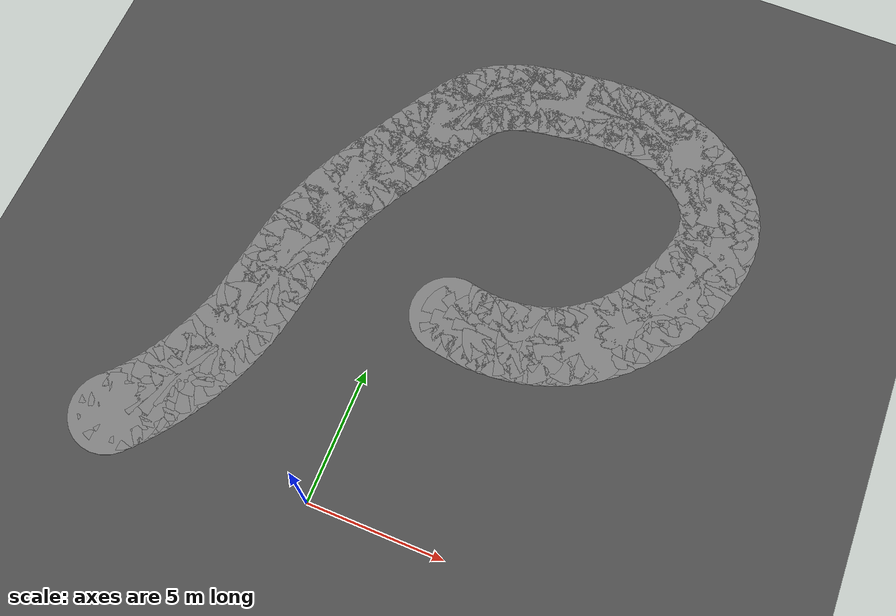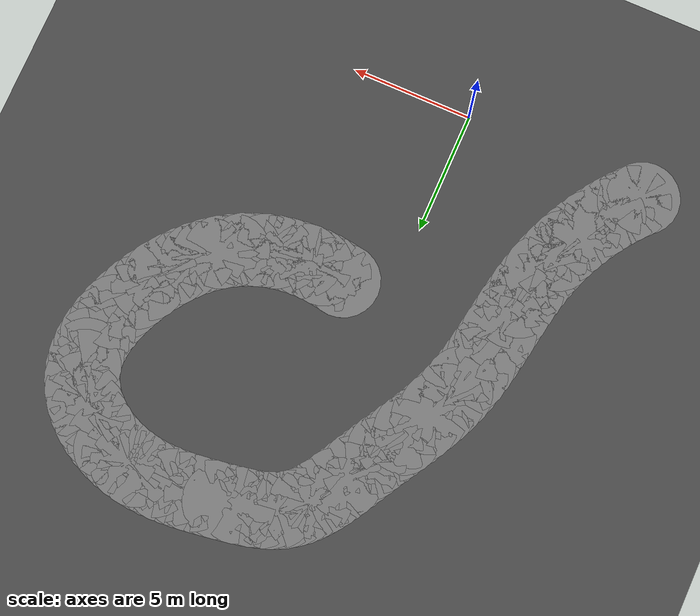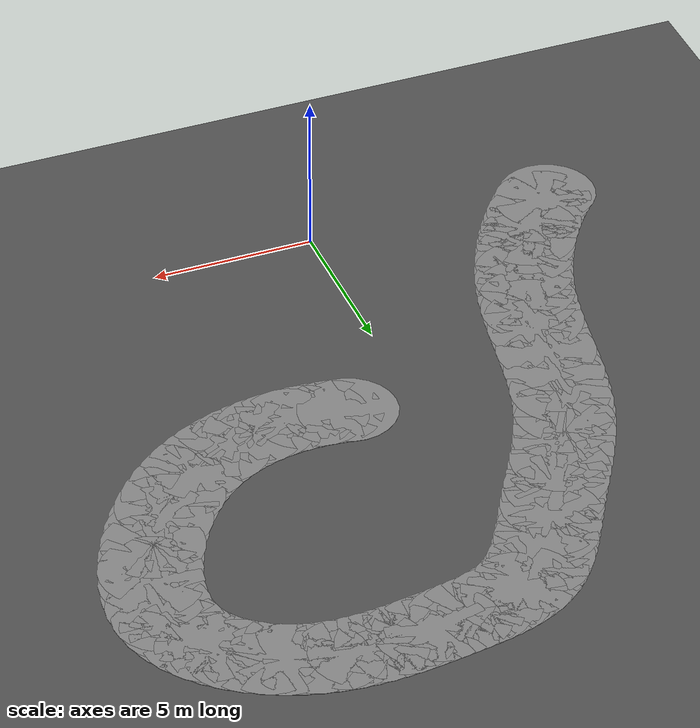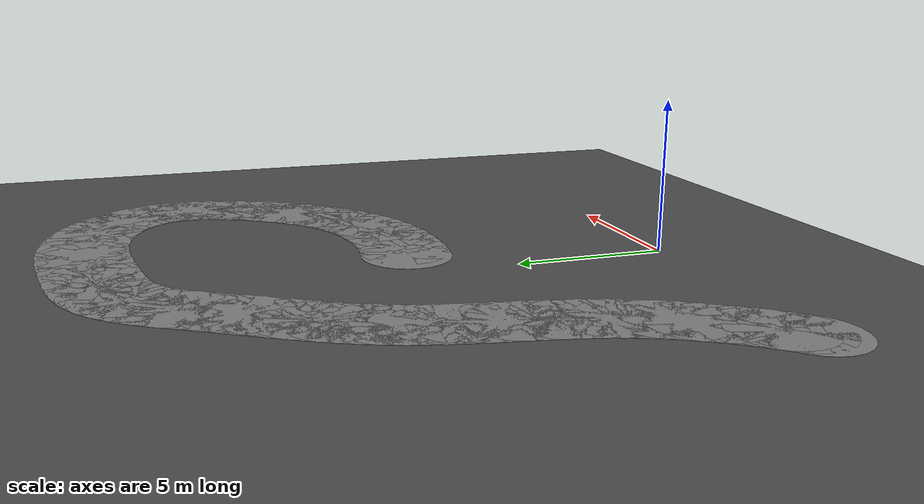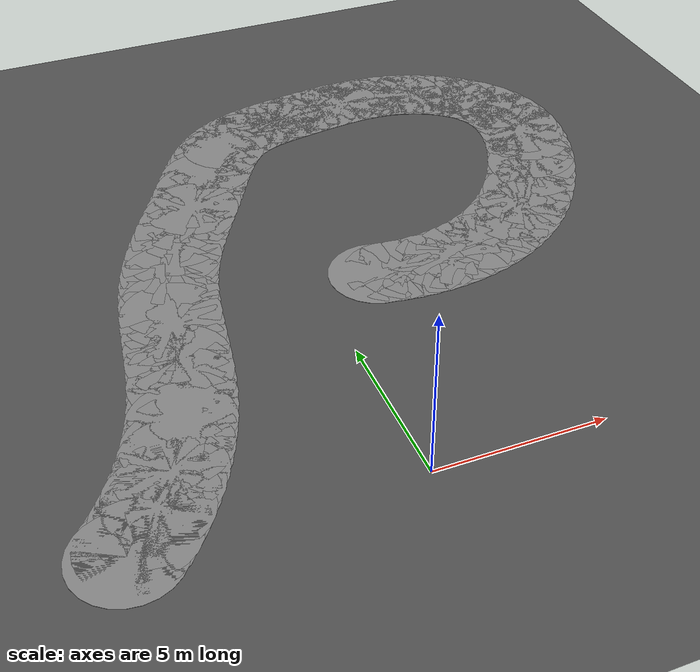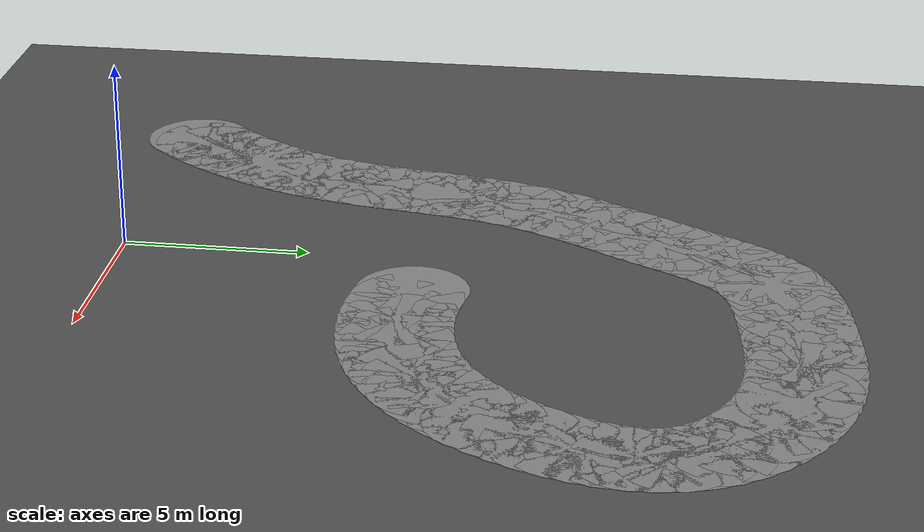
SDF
<sdf version="1.6">
 <world name="mirror_edge_world">
  <model name="ground_plane">
   <static>true</static>
   <link name="link">
    <collision name="collision">
     <geometry><plane><normal>0 0 1</normal><size>100 100</size></plane></geometry>
    </collision>
    <visual name="visual">
     <geometry><plane><normal>0 0 1</normal><size>100 100</size></plane></geometry>
     <material>
      <ambient>0.3 0.3 0.3 1</ambient>
      <diffuse>0.3 0.3 0.3 1</diffuse>
      <specular>0.5 0.5 0.5 1</specular>
      <emissive>0 0 0 1</emissive>
     </material>
    </visual>
   </link>
  </model>
  <model name="corridor_hex_99_0">
   <static>true</static>
   <link name="link">
    <pose>-7.678 0.234 0.005 0 0 0</pose>
    <visual name="visual">
     <geometry><cylinder><radius>1.5</radius><length>0.01</length><segments>6</segments></cylinder></geometry>
     <material>
      <ambient>0.5 0.5 0.5 1</ambient>
      <diffuse>0.5 0.5 0.5 1</diffuse>
      <specular>0.3 0.3 0.3 1</specular>
      <emissive>0 0 0 1</emissive>
     </material>
    </visual>
   </link>
  </model>
  <model name="corridor_hex_100_0">
   <static>true</static>
   <link name="link">
    <pose>-7.418 0.505 0.005 0 0 0</pose>
    <visual name="visual">
     <geometry><cylinder><radius>1.5</radius><length>0.01</length><segments>6</segments></cylinder></geometry>
     <material>
      <ambient>0.5 0.5 0.5 1</ambient>
      <diffuse>0.5 0.5 0.5 1</diffuse>
      <specular>0.3 0.3 0.3 1</specular>
      <emissive>0 0 0 1</emissive>
     </material>
    </visual>
   </link>
  </model>
  <model name="corridor_hex_101_0">
   <static>true</static>
   <link name="link">
    <pose>-7.165 0.796 0.005 0 0 0</pose>
    <visual name="visual">
     <geometry><cylinder><radius>1.5</radius><length>0.01</length><segments>6</segments></cylinder></geometry>
     <material>
      <ambient>0.5 0.5 0.5 1</ambient>
      <diffuse>0.5 0.5 0.5 1</diffuse>
      <specular>0.3 0.3 0.3 1</specular>
      <emissive>0 0 0 1</emissive>
     </material>
    </visual>
   </link>
  </model>
  <model name="corridor_hex_102_0">
   <static>true</static>
   <link name="link">
    <pose>-6.918 1.105 0.005 0 0 0</pose>
    <visual name="visual">
     <geometry><cylinder><radius>1.5</radius><length>0.01</length><segments>6</segments></cylinder></geometry>
     <material>
      <ambient>0.5 0.5 0.5 1</ambient>
      <diffuse>0.5 0.5 0.5 1</diffuse>
      <specular>0.3 0.3 0.3 1</specular>
      <emissive>0 0 0 1</emissive>
     </material>
    </visual>
   </link>
  </model>
  <model name="corridor_hex_103_0">
   <static>true</static>
   <link name="link">
    <pose>-6.678 1.43 0.005 0 0 0</pose>
    <visual name="visual">
     <geometry><cylinder><radius>1.5</radius><length>0.01</length><segments>6</segments></cylinder></geometry>
     <material>
      <ambient>0.5 0.5 0.5 1</ambient>
      <diffuse>0.5 0.5 0.5 1</diffuse>
      <specular>0.3 0.3 0.3 1</specular>
      <emissive>0 0 0 1</emissive>
     </material>
    </visual>
   </link>
  </model>
  <model name="corridor_hex_104_0">
   <static>true</static>
   <link name="link">
    <pose>-6.444 1.773 0.005 0 0 0</pose>
    <visual name="visual">
     <geometry><cylinder><radius>1.5</radius><length>0.01</length><segments>6</segments></cylinder></geometry>
     <material>
      <ambient>0.5 0.5 0.5 1</ambient>
      <diffuse>0.5 0.5 0.5 1</diffuse>
      <specular>0.3 0.3 0.3 1</specular>
      <emissive>0 0 0 1</emissive>
     </material>
    </visual>
   </link>
  </model>
  <model name="corridor_hex_105_0">
   <static>true</static>
   <link name="link">
    <pose>-6.218 2.131 0.005 0 0 0</pose>
    <visual name="visual">
     <geometry><cylinder><radius>1.5</radius><length>0.01</length><segments>6</segments></cylinder></geometry>
     <material>
      <ambient>0.5 0.5 0.5 1</ambient>
      <diffuse>0.5 0.5 0.5 1</diffuse>
      <specular>0.3 0.3 0.3 1</specular>
      <emissive>0 0 0 1</emissive>
     </material>
    </visual>
   </link>
  </model>
  <model name="corridor_hex_106_0">
   <static>true</static>
   <link name="link">
    <pose>-6.002 2.505 0.005 0 0 0</pose>
    <visual name="visual">
     <geometry><cylinder><radius>1.5</radius><length>0.01</length><segments>6</segments></cylinder></geometry>
     <material>
      <ambient>0.5 0.5 0.5 1</ambient>
      <diffuse>0.5 0.5 0.5 1</diffuse>
      <specular>0.3 0.3 0.3 1</specular>
      <emissive>0 0 0 1</emissive>
     </material>
    </visual>
   </link>
  </model>
  <model name="corridor_hex_107_0">
   <static>true</static>
   <link name="link">
    <pose>-5.796 2.896 0.005 0 0 0</pose>
    <visual name="visual">
     <geometry><cylinder><radius>1.5</radius><length>0.01</length><segments>6</segments></cylinder></geometry>
     <material>
      <ambient>0.5 0.5 0.5 1</ambient>
      <diffuse>0.5 0.5 0.5 1</diffuse>
      <specular>0.3 0.3 0.3 1</specular>
      <emissive>0 0 0 1</emissive>
     </material>
    </visual>
   </link>
  </model>
  <model name="corridor_hex_108_0">
   <static>true</static>
   <link name="link">
    <pose>-5.603 3.302 0.005 0 0 0</pose>
    <visual name="visual">
     <geometry><cylinder><radius>1.5</radius><length>0.01</length><segments>6</segments></cylinder></geometry>
     <material>
      <ambient>0.5 0.5 0.5 1</ambient>
      <diffuse>0.5 0.5 0.5 1</diffuse>
      <specular>0.3 0.3 0.3 1</specular>
      <emissive>0 0 0 1</emissive>
     </material>
    </visual>
   </link>
  </model>
  <model name="corridor_hex_109_0">
   <static>true</static>
   <link name="link">
    <pose>-5.424 3.723 0.005 0 0 0</pose>
    <visual name="visual">
     <geometry><cylinder><radius>1.5</radius><length>0.01</length><segments>6</segments></cylinder></geometry>
     <material>
      <ambient>0.5 0.5 0.5 1</ambient>
      <diffuse>0.5 0.5 0.5 1</diffuse>
      <specular>0.3 0.3 0.3 1</specular>
      <emissive>0 0 0 1</emissive>
     </material>
    </visual>
   </link>
  </model>
  <model name="corridor_hex_110_0">
   <static>true</static>
   <link name="link">
    <pose>-5.259 4.16 0.005 0 0 0</pose>
    <visual name="visual">
     <geometry><cylinder><radius>1.5</radius><length>0.01</length><segments>6</segments></cylinder></geometry>
     <material>
      <ambient>0.5 0.5 0.5 1</ambient>
      <diffuse>0.5 0.5 0.5 1</diffuse>
      <specular>0.3 0.3 0.3 1</specular>
      <emissive>0 0 0 1</emissive>
     </material>
    </visual>
   </link>
  </model>
  <model name="corridor_hex_111_0">
   <static>true</static>
   <link name="link">
    <pose>-5.111 4.612 0.005 0 0 0</pose>
    <visual name="visual">
     <geometry><cylinder><radius>1.5</radius><length>0.01</length><segments>6</segments></cylinder></geometry>
     <material>
      <ambient>0.5 0.5 0.5 1</ambient>
      <diffuse>0.5 0.5 0.5 1</diffuse>
      <specular>0.3 0.3 0.3 1</specular>
      <emissive>0 0 0 1</emissive>
     </material>
    </visual>
   </link>
  </model>
  <model name="corridor_hex_112_0">
   <static>true</static>
   <link name="link">
    <pose>-4.979 5.079 0.005 0 0 0</pose>
    <visual name="visual">
     <geometry><cylinder><radius>1.5</radius><length>0.01</length><segments>6</segments></cylinder></geometry>
     <material>
      <ambient>0.5 0.5 0.5 1</ambient>
      <diffuse>0.5 0.5 0.5 1</diffuse>
      <specular>0.3 0.3 0.3 1</specular>
      <emissive>0 0 0 1</emissive>
     </material>
    </visual>
   </link>
  </model>
  <model name="corridor_hex_113_0">
   <static>true</static>
   <link name="link">
    <pose>-4.866 5.559 0.005 0 0 0</pose>
    <visual name="visual">
     <geometry><cylinder><radius>1.5</radius><length>0.01</length><segments>6</segments></cylinder></geometry>
     <material>
      <ambient>0.5 0.5 0.5 1</ambient>
      <diffuse>0.5 0.5 0.5 1</diffuse>
      <specular>0.3 0.3 0.3 1</specular>
      <emissive>0 0 0 1</emissive>
     </material>
    </visual>
   </link>
  </model>
  <model name="corridor_hex_114_0">
   <static>true</static>
   <link name="link">
    <pose>-4.766 6.051 0.005 0 0 0</pose>
    <visual name="visual">
     <geometry><cylinder><radius>1.5</radius><length>0.01</length><segments>6</segments></cylinder></geometry>
     <material>
      <ambient>0.5 0.5 0.5 1</ambient>
      <diffuse>0.5 0.5 0.5 1</diffuse>
      <specular>0.3 0.3 0.3 1</specular>
      <emissive>0 0 0 1</emissive>
     </material>
    </visual>
   </link>
  </model>
  <model name="corridor_hex_115_0">
   <static>true</static>
   <link name="link">
    <pose>-4.676 6.55 0.005 0 0 0</pose>
    <visual name="visual">
     <geometry><cylinder><radius>1.5</radius><length>0.01</length><segments>6</segments></cylinder></geometry>
     <material>
      <ambient>0.5 0.5 0.5 1</ambient>
      <diffuse>0.5 0.5 0.5 1</diffuse>
      <specular>0.3 0.3 0.3 1</specular>
      <emissive>0 0 0 1</emissive>
     </material>
    </visual>
   </link>
  </model>
  <model name="corridor_hex_116_0">
   <static>true</static>
   <link name="link">
    <pose>-4.593 7.054 0.005 0 0 0</pose>
    <visual name="visual">
     <geometry><cylinder><radius>1.5</radius><length>0.01</length><segments>6</segments></cylinder></geometry>
     <material>
      <ambient>0.5 0.5 0.5 1</ambient>
      <diffuse>0.5 0.5 0.5 1</diffuse>
      <specular>0.3 0.3 0.3 1</specular>
      <emissive>0 0 0 1</emissive>
     </material>
    </visual>
   </link>
  </model>
  <model name="corridor_hex_117_0">
   <static>true</static>
   <link name="link">
    <pose>-4.511 7.56 0.005 0 0 0</pose>
    <visual name="visual">
     <geometry><cylinder><radius>1.5</radius><length>0.01</length><segments>6</segments></cylinder></geometry>
     <material>
      <ambient>0.5 0.5 0.5 1</ambient>
      <diffuse>0.5 0.5 0.5 1</diffuse>
      <specular>0.3 0.3 0.3 1</specular>
      <emissive>0 0 0 1</emissive>
     </material>
    </visual>
   </link>
  </model>
  <model name="corridor_hex_118_0">
   <static>true</static>
   <link name="link">
    <pose>-4.428 8.064 0.005 0 0 0</pose>
    <visual name="visual">
     <geometry><cylinder><radius>1.5</radius><length>0.01</length><segments>6</segments></cylinder></geometry>
     <material>
      <ambient>0.5 0.5 0.5 1</ambient>
      <diffuse>0.5 0.5 0.5 1</diffuse>
      <specular>0.3 0.3 0.3 1</specular>
      <emissive>0 0 0 1</emissive>
     </material>
    </visual>
   </link>
  </model>
  <model name="corridor_hex_119_0">
   <static>true</static>
   <link name="link">
    <pose>-4.339 8.563 0.005 0 0 0</pose>
    <visual name="visual">
     <geometry><cylinder><radius>1.5</radius><length>0.01</length><segments>6</segments></cylinder></geometry>
     <material>
      <ambient>0.5 0.5 0.5 1</ambient>
      <diffuse>0.5 0.5 0.5 1</diffuse>
      <specular>0.3 0.3 0.3 1</specular>
      <emissive>0 0 0 1</emissive>
     </material>
    </visual>
   </link>
  </model>
  <model name="corridor_hex_120_0">
   <static>true</static>
   <link name="link">
    <pose>-4.241 9.054 0.005 0 0 0</pose>
    <visual name="visual">
     <geometry><cylinder><radius>1.5</radius><length>0.01</length><segments>6</segments></cylinder></geometry>
     <material>
      <ambient>0.5 0.5 0.5 1</ambient>
      <diffuse>0.5 0.5 0.5 1</diffuse>
      <specular>0.3 0.3 0.3 1</specular>
      <emissive>0 0 0 1</emissive>
     </material>
    </visual>
   </link>
  </model>
  <model name="corridor_hex_121_0">
   <static>true</static>
   <link name="link">
    <pose>-4.129 9.534 0.005 0 0 0</pose>
    <visual name="visual">
     <geometry><cylinder><radius>1.5</radius><length>0.01</length><segments>6</segments></cylinder></geometry>
     <material>
      <ambient>0.5 0.5 0.5 1</ambient>
      <diffuse>0.5 0.5 0.5 1</diffuse>
      <specular>0.3 0.3 0.3 1</specular>
      <emissive>0 0 0 1</emissive>
     </material>
    </visual>
   </link>
  </model>
  <model name="corridor_hex_122_0">
   <static>true</static>
   <link name="link">
    <pose>-4.0 10.0 0.005 0 0 0</pose>
    <visual name="visual">
     <geometry><cylinder><radius>1.5</radius><length>0.01</length><segments>6</segments></cylinder></geometry>
     <material>
      <ambient>0.5 0.5 0.5 1</ambient>
      <diffuse>0.5 0.5 0.5 1</diffuse>
      <specular>0.3 0.3 0.3 1</specular>
      <emissive>0 0 0 1</emissive>
     </material>
    </visual>
   </link>
  </model>
  <model name="corridor_hex_123_0">
   <static>true</static>
   <link name="link">
    <pose>-3.851 10.449 0.005 0 0 0</pose>
    <visual name="visual">
     <geometry><cylinder><radius>1.5</radius><length>0.01</length><segments>6</segments></cylinder></geometry>
     <material>
      <ambient>0.5 0.5 0.5 1</ambient>
      <diffuse>0.5 0.5 0.5 1</diffuse>
      <specular>0.3 0.3 0.3 1</specular>
      <emissive>0 0 0 1</emissive>
     </material>
    </visual>
   </link>
  </model>
  <model name="corridor_hex_124_0">
   <static>true</static>
   <link name="link">
    <pose>-3.683 10.882 0.005 0 0 0</pose>
    <visual name="visual">
     <geometry><cylinder><radius>1.5</radius><length>0.01</length><segments>6</segments></cylinder></geometry>
     <material>
      <ambient>0.5 0.5 0.5 1</ambient>
      <diffuse>0.5 0.5 0.5 1</diffuse>
      <specular>0.3 0.3 0.3 1</specular>
      <emissive>0 0 0 1</emissive>
     </material>
    </visual>
   </link>
  </model>
  <model name="corridor_hex_125_0">
   <static>true</static>
   <link name="link">
    <pose>-3.499 11.301 0.005 0 0 0</pose>
    <visual name="visual">
     <geometry><cylinder><radius>1.5</radius><length>0.01</length><segments>6</segments></cylinder></geometry>
     <material>
      <ambient>0.5 0.5 0.5 1</ambient>
      <diffuse>0.5 0.5 0.5 1</diffuse>
      <specular>0.3 0.3 0.3 1</specular>
      <emissive>0 0 0 1</emissive>
     </material>
    </visual>
   </link>
  </model>
  <model name="corridor_hex_126_0">
   <static>true</static>
   <link name="link">
    <pose>-3.304 11.706 0.005 0 0 0</pose>
    <visual name="visual">
     <geometry><cylinder><radius>1.5</radius><length>0.01</length><segments>6</segments></cylinder></geometry>
     <material>
      <ambient>0.5 0.5 0.5 1</ambient>
      <diffuse>0.5 0.5 0.5 1</diffuse>
      <specular>0.3 0.3 0.3 1</specular>
      <emissive>0 0 0 1</emissive>
     </material>
    </visual>
   </link>
  </model>
  <model name="corridor_hex_127_0">
   <static>true</static>
   <link name="link">
    <pose>-3.098 12.1 0.005 0 0 0</pose>
    <visual name="visual">
     <geometry><cylinder><radius>1.5</radius><length>0.01</length><segments>6</segments></cylinder></geometry>
     <material>
      <ambient>0.5 0.5 0.5 1</ambient>
      <diffuse>0.5 0.5 0.5 1</diffuse>
      <specular>0.3 0.3 0.3 1</specular>
      <emissive>0 0 0 1</emissive>
     </material>
    </visual>
   </link>
  </model>
  <model name="corridor_hex_128_0">
   <static>true</static>
   <link name="link">
    <pose>-2.887 12.483 0.005 0 0 0</pose>
    <visual name="visual">
     <geometry><cylinder><radius>1.5</radius><length>0.01</length><segments>6</segments></cylinder></geometry>
     <material>
      <ambient>0.5 0.5 0.5 1</ambient>
      <diffuse>0.5 0.5 0.5 1</diffuse>
      <specular>0.3 0.3 0.3 1</specular>
      <emissive>0 0 0 1</emissive>
     </material>
    </visual>
   </link>
  </model>
  <model name="corridor_hex_129_0">
   <static>true</static>
   <link name="link">
    <pose>-2.671 12.857 0.005 0 0 0</pose>
    <visual name="visual">
     <geometry><cylinder><radius>1.5</radius><length>0.01</length><segments>6</segments></cylinder></geometry>
     <material>
      <ambient>0.5 0.5 0.5 1</ambient>
      <diffuse>0.5 0.5 0.5 1</diffuse>
      <specular>0.3 0.3 0.3 1</specular>
      <emissive>0 0 0 1</emissive>
     </material>
    </visual>
   </link>
  </model>
  <model name="corridor_hex_130_0">
   <static>true</static>
   <link name="link">
    <pose>-2.455 13.224 0.005 0 0 0</pose>
    <visual name="visual">
     <geometry><cylinder><radius>1.5</radius><length>0.01</length><segments>6</segments></cylinder></geometry>
     <material>
      <ambient>0.5 0.5 0.5 1</ambient>
      <diffuse>0.5 0.5 0.5 1</diffuse>
      <specular>0.3 0.3 0.3 1</specular>
      <emissive>0 0 0 1</emissive>
     </material>
    </visual>
   </link>
  </model>
  <model name="corridor_hex_131_0">
   <static>true</static>
   <link name="link">
    <pose>-2.242 13.585 0.005 0 0 0</pose>
    <visual name="visual">
     <geometry><cylinder><radius>1.5</radius><length>0.01</length><segments>6</segments></cylinder></geometry>
     <material>
      <ambient>0.5 0.5 0.5 1</ambient>
      <diffuse>0.5 0.5 0.5 1</diffuse>
      <specular>0.3 0.3 0.3 1</specular>
      <emissive>0 0 0 1</emissive>
     </material>
    </visual>
   </link>
  </model>
  <model name="corridor_hex_132_0">
   <static>true</static>
   <link name="link">
    <pose>-2.034 13.941 0.005 0 0 0</pose>
    <visual name="visual">
     <geometry><cylinder><radius>1.5</radius><length>0.01</length><segments>6</segments></cylinder></geometry>
     <material>
      <ambient>0.5 0.5 0.5 1</ambient>
      <diffuse>0.5 0.5 0.5 1</diffuse>
      <specular>0.3 0.3 0.3 1</specular>
      <emissive>0 0 0 1</emissive>
     </material>
    </visual>
   </link>
  </model>
  <model name="corridor_hex_133_0">
   <static>true</static>
   <link name="link">
    <pose>-1.834 14.294 0.005 0 0 0</pose>
    <visual name="visual">
     <geometry><cylinder><radius>1.5</radius><length>0.01</length><segments>6</segments></cylinder></geometry>
     <material>
      <ambient>0.5 0.5 0.5 1</ambient>
      <diffuse>0.5 0.5 0.5 1</diffuse>
      <specular>0.3 0.3 0.3 1</specular>
      <emissive>0 0 0 1</emissive>
     </material>
    </visual>
   </link>
  </model>
  <model name="corridor_hex_134_0">
   <static>true</static>
   <link name="link">
    <pose>-1.64 14.641 0.005 0 0 0</pose>
    <visual name="visual">
     <geometry><cylinder><radius>1.5</radius><length>0.01</length><segments>6</segments></cylinder></geometry>
     <material>
      <ambient>0.5 0.5 0.5 1</ambient>
      <diffuse>0.5 0.5 0.5 1</diffuse>
      <specular>0.3 0.3 0.3 1</specular>
      <emissive>0 0 0 1</emissive>
     </material>
    </visual>
   </link>
  </model>
  <model name="corridor_hex_135_0">
   <static>true</static>
   <link name="link">
    <pose>-1.452 14.981 0.005 0 0 0</pose>
    <visual name="visual">
     <geometry><cylinder><radius>1.5</radius><length>0.01</length><segments>6</segments></cylinder></geometry>
     <material>
      <ambient>0.5 0.5 0.5 1</ambient>
      <diffuse>0.5 0.5 0.5 1</diffuse>
      <specular>0.3 0.3 0.3 1</specular>
      <emissive>0 0 0 1</emissive>
     </material>
    </visual>
   </link>
  </model>
  <model name="corridor_hex_136_0">
   <static>true</static>
   <link name="link">
    <pose>-1.266 15.311 0.005 0 0 0</pose>
    <visual name="visual">
     <geometry><cylinder><radius>1.5</radius><length>0.01</length><segments>6</segments></cylinder></geometry>
     <material>
      <ambient>0.5 0.5 0.5 1</ambient>
      <diffuse>0.5 0.5 0.5 1</diffuse>
      <specular>0.3 0.3 0.3 1</specular>
      <emissive>0 0 0 1</emissive>
     </material>
    </visual>
   </link>
  </model>
  <model name="corridor_hex_137_0">
   <static>true</static>
   <link name="link">
    <pose>-1.08 15.628 0.005 0 0 0</pose>
    <visual name="visual">
     <geometry><cylinder><radius>1.5</radius><length>0.01</length><segments>6</segments></cylinder></geometry>
     <material>
      <ambient>0.5 0.5 0.5 1</ambient>
      <diffuse>0.5 0.5 0.5 1</diffuse>
      <specular>0.3 0.3 0.3 1</specular>
      <emissive>0 0 0 1</emissive>
     </material>
    </visual>
   </link>
  </model>
  <model name="corridor_hex_138_0">
   <static>true</static>
   <link name="link">
    <pose>-0.892 15.93 0.005 0 0 0</pose>
    <visual name="visual">
     <geometry><cylinder><radius>1.5</radius><length>0.01</length><segments>6</segments></cylinder></geometry>
     <material>
      <ambient>0.5 0.5 0.5 1</ambient>
      <diffuse>0.5 0.5 0.5 1</diffuse>
      <specular>0.3 0.3 0.3 1</specular>
      <emissive>0 0 0 1</emissive>
     </material>
    </visual>
   </link>
  </model>
  <model name="corridor_hex_139_0">
   <static>true</static>
   <link name="link">
    <pose>-0.7 16.214 0.005 0 0 0</pose>
    <visual name="visual">
     <geometry><cylinder><radius>1.5</radius><length>0.01</length><segments>6</segments></cylinder></geometry>
     <material>
      <ambient>0.5 0.5 0.5 1</ambient>
      <diffuse>0.5 0.5 0.5 1</diffuse>
      <specular>0.3 0.3 0.3 1</specular>
      <emissive>0 0 0 1</emissive>
     </material>
    </visual>
   </link>
  </model>
  <model name="corridor_hex_140_0">
   <static>true</static>
   <link name="link">
    <pose>-0.501 16.477 0.005 0 0 0</pose>
    <visual name="visual">
     <geometry><cylinder><radius>1.5</radius><length>0.01</length><segments>6</segments></cylinder></geometry>
     <material>
      <ambient>0.5 0.5 0.5 1</ambient>
      <diffuse>0.5 0.5 0.5 1</diffuse>
      <specular>0.3 0.3 0.3 1</specular>
      <emissive>0 0 0 1</emissive>
     </material>
    </visual>
   </link>
  </model>
  <model name="corridor_hex_141_0">
   <static>true</static>
   <link name="link">
    <pose>-0.294 16.718 0.005 0 0 0</pose>
    <visual name="visual">
     <geometry><cylinder><radius>1.5</radius><length>0.01</length><segments>6</segments></cylinder></geometry>
     <material>
      <ambient>0.5 0.5 0.5 1</ambient>
      <diffuse>0.5 0.5 0.5 1</diffuse>
      <specular>0.3 0.3 0.3 1</specular>
      <emissive>0 0 0 1</emissive>
     </material>
    </visual>
   </link>
  </model>
  <model name="corridor_hex_142_0">
   <static>true</static>
   <link name="link">
    <pose>-0.076 16.934 0.005 0 0 0</pose>
    <visual name="visual">
     <geometry><cylinder><radius>1.5</radius><length>0.01</length><segments>6</segments></cylinder></geometry>
     <material>
      <ambient>0.5 0.5 0.5 1</ambient>
      <diffuse>0.5 0.5 0.5 1</diffuse>
      <specular>0.3 0.3 0.3 1</specular>
      <emissive>0 0 0 1</emissive>
     </material>
    </visual>
   </link>
  </model>
  <model name="corridor_hex_143_0">
   <static>true</static>
   <link name="link">
    <pose>0.156 17.122 0.005 0 0 0</pose>
    <visual name="visual">
     <geometry><cylinder><radius>1.5</radius><length>0.01</length><segments>6</segments></cylinder></geometry>
     <material>
      <ambient>0.5 0.5 0.5 1</ambient>
      <diffuse>0.5 0.5 0.5 1</diffuse>
      <specular>0.3 0.3 0.3 1</specular>
      <emissive>0 0 0 1</emissive>
     </material>
    </visual>
   </link>
  </model>
  <model name="corridor_hex_144_0">
   <static>true</static>
   <link name="link">
    <pose>0.401 17.284 0.005 0 0 0</pose>
    <visual name="visual">
     <geometry><cylinder><radius>1.5</radius><length>0.01</length><segments>6</segments></cylinder></geometry>
     <material>
      <ambient>0.5 0.5 0.5 1</ambient>
      <diffuse>0.5 0.5 0.5 1</diffuse>
      <specular>0.3 0.3 0.3 1</specular>
      <emissive>0 0 0 1</emissive>
     </material>
    </visual>
   </link>
  </model>
  <model name="corridor_hex_145_0">
   <static>true</static>
   <link name="link">
    <pose>0.66 17.421 0.005 0 0 0</pose>
    <visual name="visual">
     <geometry><cylinder><radius>1.5</radius><length>0.01</length><segments>6</segments></cylinder></geometry>
     <material>
      <ambient>0.5 0.5 0.5 1</ambient>
      <diffuse>0.5 0.5 0.5 1</diffuse>
      <specular>0.3 0.3 0.3 1</specular>
      <emissive>0 0 0 1</emissive>
     </material>
    </visual>
   </link>
  </model>
  <model name="corridor_hex_146_0">
   <static>true</static>
   <link name="link">
    <pose>0.932 17.538 0.005 0 0 0</pose>
    <visual name="visual">
     <geometry><cylinder><radius>1.5</radius><length>0.01</length><segments>6</segments></cylinder></geometry>
     <material>
      <ambient>0.5 0.5 0.5 1</ambient>
      <diffuse>0.5 0.5 0.5 1</diffuse>
      <specular>0.3 0.3 0.3 1</specular>
      <emissive>0 0 0 1</emissive>
     </material>
    </visual>
   </link>
  </model>
  <model name="corridor_hex_147_0">
   <static>true</static>
   <link name="link">
    <pose>1.216 17.638 0.005 0 0 0</pose>
    <visual name="visual">
     <geometry><cylinder><radius>1.5</radius><length>0.01</length><segments>6</segments></cylinder></geometry>
     <material>
      <ambient>0.5 0.5 0.5 1</ambient>
      <diffuse>0.5 0.5 0.5 1</diffuse>
      <specular>0.3 0.3 0.3 1</specular>
      <emissive>0 0 0 1</emissive>
     </material>
    </visual>
   </link>
  </model>
  <model name="corridor_hex_148_0">
   <static>true</static>
   <link name="link">
    <pose>1.514 17.722 0.005 0 0 0</pose>
    <visual name="visual">
     <geometry><cylinder><radius>1.5</radius><length>0.01</length><segments>6</segments></cylinder></geometry>
     <material>
      <ambient>0.5 0.5 0.5 1</ambient>
      <diffuse>0.5 0.5 0.5 1</diffuse>
      <specular>0.3 0.3 0.3 1</specular>
      <emissive>0 0 0 1</emissive>
     </material>
    </visual>
   </link>
  </model>
  <model name="corridor_hex_149_0">
   <static>true</static>
   <link name="link">
    <pose>1.823 17.795 0.005 0 0 0</pose>
    <visual name="visual">
     <geometry><cylinder><radius>1.5</radius><length>0.01</length><segments>6</segments></cylinder></geometry>
     <material>
      <ambient>0.5 0.5 0.5 1</ambient>
      <diffuse>0.5 0.5 0.5 1</diffuse>
      <specular>0.3 0.3 0.3 1</specular>
      <emissive>0 0 0 1</emissive>
     </material>
    </visual>
   </link>
  </model>
  <model name="corridor_hex_150_0">
   <static>true</static>
   <link name="link">
    <pose>2.145 17.859 0.005 0 0 0</pose>
    <visual name="visual">
     <geometry><cylinder><radius>1.5</radius><length>0.01</length><segments>6</segments></cylinder></geometry>
     <material>
      <ambient>0.5 0.5 0.5 1</ambient>
      <diffuse>0.5 0.5 0.5 1</diffuse>
      <specular>0.3 0.3 0.3 1</specular>
      <emissive>0 0 0 1</emissive>
     </material>
    </visual>
   </link>
  </model>
  <model name="corridor_hex_151_0">
   <static>true</static>
   <link name="link">
    <pose>2.479 17.917 0.005 0 0 0</pose>
    <visual name="visual">
     <geometry><cylinder><radius>1.5</radius><length>0.01</length><segments>6</segments></cylinder></geometry>
     <material>
      <ambient>0.5 0.5 0.5 1</ambient>
      <diffuse>0.5 0.5 0.5 1</diffuse>
      <specular>0.3 0.3 0.3 1</specular>
      <emissive>0 0 0 1</emissive>
     </material>
    </visual>
   </link>
  </model>
  <model name="corridor_hex_152_0">
   <static>true</static>
   <link name="link">
    <pose>2.823 17.972 0.005 0 0 0</pose>
    <visual name="visual">
     <geometry><cylinder><radius>1.5</radius><length>0.01</length><segments>6</segments></cylinder></geometry>
     <material>
      <ambient>0.5 0.5 0.5 1</ambient>
      <diffuse>0.5 0.5 0.5 1</diffuse>
      <specular>0.3 0.3 0.3 1</specular>
      <emissive>0 0 0 1</emissive>
     </material>
    </visual>
   </link>
  </model>
  <model name="corridor_hex_153_0">
   <static>true</static>
   <link name="link">
    <pose>3.179 18.028 0.005 0 0 0</pose>
    <visual name="visual">
     <geometry><cylinder><radius>1.5</radius><length>0.01</length><segments>6</segments></cylinder></geometry>
     <material>
      <ambient>0.5 0.5 0.5 1</ambient>
      <diffuse>0.5 0.5 0.5 1</diffuse>
      <specular>0.3 0.3 0.3 1</specular>
      <emissive>0 0 0 1</emissive>
     </material>
    </visual>
   </link>
  </model>
  <model name="corridor_hex_154_0">
   <static>true</static>
   <link name="link">
    <pose>3.546 18.083 0.005 0 0 0</pose>
    <visual name="visual">
     <geometry><cylinder><radius>1.5</radius><length>0.01</length><segments>6</segments></cylinder></geometry>
     <material>
      <ambient>0.5 0.5 0.5 1</ambient>
      <diffuse>0.5 0.5 0.5 1</diffuse>
      <specular>0.3 0.3 0.3 1</specular>
      <emissive>0 0 0 1</emissive>
     </material>
    </visual>
   </link>
  </model>
  <model name="corridor_hex_155_0">
   <static>true</static>
   <link name="link">
    <pose>3.922 18.134 0.005 0 0 0</pose>
    <visual name="visual">
     <geometry><cylinder><radius>1.5</radius><length>0.01</length><segments>6</segments></cylinder></geometry>
     <material>
      <ambient>0.5 0.5 0.5 1</ambient>
      <diffuse>0.5 0.5 0.5 1</diffuse>
      <specular>0.3 0.3 0.3 1</specular>
      <emissive>0 0 0 1</emissive>
     </material>
    </visual>
   </link>
  </model>
  <model name="corridor_hex_156_0">
   <static>true</static>
   <link name="link">
    <pose>4.306 18.178 0.005 0 0 0</pose>
    <visual name="visual">
     <geometry><cylinder><radius>1.5</radius><length>0.01</length><segments>6</segments></cylinder></geometry>
     <material>
      <ambient>0.5 0.5 0.5 1</ambient>
      <diffuse>0.5 0.5 0.5 1</diffuse>
      <specular>0.3 0.3 0.3 1</specular>
      <emissive>0 0 0 1</emissive>
     </material>
    </visual>
   </link>
  </model>
  <model name="corridor_hex_157_0">
   <static>true</static>
   <link name="link">
    <pose>4.697 18.21 0.005 0 0 0</pose>
    <visual name="visual">
     <geometry><cylinder><radius>1.5</radius><length>0.01</length><segments>6</segments></cylinder></geometry>
     <material>
      <ambient>0.5 0.5 0.5 1</ambient>
      <diffuse>0.5 0.5 0.5 1</diffuse>
      <specular>0.3 0.3 0.3 1</specular>
      <emissive>0 0 0 1</emissive>
     </material>
    </visual>
   </link>
  </model>
  <model name="corridor_hex_158_0">
   <static>true</static>
   <link name="link">
    <pose>5.095 18.228 0.005 0 0 0</pose>
    <visual name="visual">
     <geometry><cylinder><radius>1.5</radius><length>0.01</length><segments>6</segments></cylinder></geometry>
     <material>
      <ambient>0.5 0.5 0.5 1</ambient>
      <diffuse>0.5 0.5 0.5 1</diffuse>
      <specular>0.3 0.3 0.3 1</specular>
      <emissive>0 0 0 1</emissive>
     </material>
    </visual>
   </link>
  </model>
  <model name="corridor_hex_159_0">
   <static>true</static>
   <link name="link">
    <pose>5.497 18.226 0.005 0 0 0</pose>
    <visual name="visual">
     <geometry><cylinder><radius>1.5</radius><length>0.01</length><segments>6</segments></cylinder></geometry>
     <material>
      <ambient>0.5 0.5 0.5 1</ambient>
      <diffuse>0.5 0.5 0.5 1</diffuse>
      <specular>0.3 0.3 0.3 1</specular>
      <emissive>0 0 0 1</emissive>
     </material>
    </visual>
   </link>
  </model>
  <model name="corridor_hex_160_0">
   <static>true</static>
   <link name="link">
    <pose>5.904 18.202 0.005 0 0 0</pose>
    <visual name="visual">
     <geometry><cylinder><radius>1.5</radius><length>0.01</length><segments>6</segments></cylinder></geometry>
     <material>
      <ambient>0.5 0.5 0.5 1</ambient>
      <diffuse>0.5 0.5 0.5 1</diffuse>
      <specular>0.3 0.3 0.3 1</specular>
      <emissive>0 0 0 1</emissive>
     </material>
    </visual>
   </link>
  </model>
  <model name="corridor_hex_161_0">
   <static>true</static>
   <link name="link">
    <pose>6.314 18.152 0.005 0 0 0</pose>
    <visual name="visual">
     <geometry><cylinder><radius>1.5</radius><length>0.01</length><segments>6</segments></cylinder></geometry>
     <material>
      <ambient>0.5 0.5 0.5 1</ambient>
      <diffuse>0.5 0.5 0.5 1</diffuse>
      <specular>0.3 0.3 0.3 1</specular>
      <emissive>0 0 0 1</emissive>
     </material>
    </visual>
   </link>
  </model>
  <model name="corridor_hex_162_0">
   <static>true</static>
   <link name="link">
    <pose>6.725 18.072 0.005 0 0 0</pose>
    <visual name="visual">
     <geometry><cylinder><radius>1.5</radius><length>0.01</length><segments>6</segments></cylinder></geometry>
     <material>
      <ambient>0.5 0.5 0.5 1</ambient>
      <diffuse>0.5 0.5 0.5 1</diffuse>
      <specular>0.3 0.3 0.3 1</specular>
      <emissive>0 0 0 1</emissive>
     </material>
    </visual>
   </link>
  </model>
  <model name="corridor_hex_163_0">
   <static>true</static>
   <link name="link">
    <pose>7.137 17.958 0.005 0 0 0</pose>
    <visual name="visual">
     <geometry><cylinder><radius>1.5</radius><length>0.01</length><segments>6</segments></cylinder></geometry>
     <material>
      <ambient>0.5 0.5 0.5 1</ambient>
      <diffuse>0.5 0.5 0.5 1</diffuse>
      <specular>0.3 0.3 0.3 1</specular>
      <emissive>0 0 0 1</emissive>
     </material>
    </visual>
   </link>
  </model>
  <model name="corridor_hex_164_0">
   <static>true</static>
   <link name="link">
    <pose>7.547 17.809 0.005 0 0 0</pose>
    <visual name="visual">
     <geometry><cylinder><radius>1.5</radius><length>0.01</length><segments>6</segments></cylinder></geometry>
     <material>
      <ambient>0.5 0.5 0.5 1</ambient>
      <diffuse>0.5 0.5 0.5 1</diffuse>
      <specular>0.3 0.3 0.3 1</specular>
      <emissive>0 0 0 1</emissive>
     </material>
    </visual>
   </link>
  </model>
  <model name="corridor_hex_165_0">
   <static>true</static>
   <link name="link">
    <pose>7.948 17.624 0.005 0 0 0</pose>
    <visual name="visual">
     <geometry><cylinder><radius>1.5</radius><length>0.01</length><segments>6</segments></cylinder></geometry>
     <material>
      <ambient>0.5 0.5 0.5 1</ambient>
      <diffuse>0.5 0.5 0.5 1</diffuse>
      <specular>0.3 0.3 0.3 1</specular>
      <emissive>0 0 0 1</emissive>
     </material>
    </visual>
   </link>
  </model>
  <model name="corridor_hex_166_0">
   <static>true</static>
   <link name="link">
    <pose>8.333 17.404 0.005 0 0 0</pose>
    <visual name="visual">
     <geometry><cylinder><radius>1.5</radius><length>0.01</length><segments>6</segments></cylinder></geometry>
     <material>
      <ambient>0.5 0.5 0.5 1</ambient>
      <diffuse>0.5 0.5 0.5 1</diffuse>
      <specular>0.3 0.3 0.3 1</specular>
      <emissive>0 0 0 1</emissive>
     </material>
    </visual>
   </link>
  </model>
  <model name="corridor_hex_167_0">
   <static>true</static>
   <link name="link">
    <pose>8.696 17.149 0.005 0 0 0</pose>
    <visual name="visual">
     <geometry><cylinder><radius>1.5</radius><length>0.01</length><segments>6</segments></cylinder></geometry>
     <material>
      <ambient>0.5 0.5 0.5 1</ambient>
      <diffuse>0.5 0.5 0.5 1</diffuse>
      <specular>0.3 0.3 0.3 1</specular>
      <emissive>0 0 0 1</emissive>
     </material>
    </visual>
   </link>
  </model>
  <model name="corridor_hex_168_0">
   <static>true</static>
   <link name="link">
    <pose>9.028 16.86 0.005 0 0 0</pose>
    <visual name="visual">
     <geometry><cylinder><radius>1.5</radius><length>0.01</length><segments>6</segments></cylinder></geometry>
     <material>
      <ambient>0.5 0.5 0.5 1</ambient>
      <diffuse>0.5 0.5 0.5 1</diffuse>
      <specular>0.3 0.3 0.3 1</specular>
      <emissive>0 0 0 1</emissive>
     </material>
    </visual>
   </link>
  </model>
  <model name="corridor_hex_169_0">
   <static>true</static>
   <link name="link">
    <pose>9.325 16.538 0.005 0 0 0</pose>
    <visual name="visual">
     <geometry><cylinder><radius>1.5</radius><length>0.01</length><segments>6</segments></cylinder></geometry>
     <material>
      <ambient>0.5 0.5 0.5 1</ambient>
      <diffuse>0.5 0.5 0.5 1</diffuse>
      <specular>0.3 0.3 0.3 1</specular>
      <emissive>0 0 0 1</emissive>
     </material>
    </visual>
   </link>
  </model>
  <model name="corridor_hex_170_0">
   <static>true</static>
   <link name="link">
    <pose>9.578 16.183 0.005 0 0 0</pose>
    <visual name="visual">
     <geometry><cylinder><radius>1.5</radius><length>0.01</length><segments>6</segments></cylinder></geometry>
     <material>
      <ambient>0.5 0.5 0.5 1</ambient>
      <diffuse>0.5 0.5 0.5 1</diffuse>
      <specular>0.3 0.3 0.3 1</specular>
      <emissive>0 0 0 1</emissive>
     </material>
    </visual>
   </link>
  </model>
  <model name="corridor_hex_171_0">
   <static>true</static>
   <link name="link">
    <pose>9.781 15.795 0.005 0 0 0</pose>
    <visual name="visual">
     <geometry><cylinder><radius>1.5</radius><length>0.01</length><segments>6</segments></cylinder></geometry>
     <material>
      <ambient>0.5 0.5 0.5 1</ambient>
      <diffuse>0.5 0.5 0.5 1</diffuse>
      <specular>0.3 0.3 0.3 1</specular>
      <emissive>0 0 0 1</emissive>
     </material>
    </visual>
   </link>
  </model>
  <model name="corridor_hex_172_0">
   <static>true</static>
   <link name="link">
    <pose>9.927 15.374 0.005 0 0 0</pose>
    <visual name="visual">
     <geometry><cylinder><radius>1.5</radius><length>0.01</length><segments>6</segments></cylinder></geometry>
     <material>
      <ambient>0.5 0.5 0.5 1</ambient>
      <diffuse>0.5 0.5 0.5 1</diffuse>
      <specular>0.3 0.3 0.3 1</specular>
      <emissive>0 0 0 1</emissive>
     </material>
    </visual>
   </link>
  </model>
  <model name="corridor_hex_173_0">
   <static>true</static>
   <link name="link">
    <pose>10.009 14.923 0.005 0 0 0</pose>
    <visual name="visual">
     <geometry><cylinder><radius>1.5</radius><length>0.01</length><segments>6</segments></cylinder></geometry>
     <material>
      <ambient>0.5 0.5 0.5 1</ambient>
      <diffuse>0.5 0.5 0.5 1</diffuse>
      <specular>0.3 0.3 0.3 1</specular>
      <emissive>0 0 0 1</emissive>
     </material>
    </visual>
   </link>
  </model>
  <model name="corridor_hex_174_0">
   <static>true</static>
   <link name="link">
    <pose>10.024 14.441 0.005 0 0 0</pose>
    <visual name="visual">
     <geometry><cylinder><radius>1.5</radius><length>0.01</length><segments>6</segments></cylinder></geometry>
     <material>
      <ambient>0.5 0.5 0.5 1</ambient>
      <diffuse>0.5 0.5 0.5 1</diffuse>
      <specular>0.3 0.3 0.3 1</specular>
      <emissive>0 0 0 1</emissive>
     </material>
    </visual>
   </link>
  </model>
  <model name="corridor_hex_175_0">
   <static>true</static>
   <link name="link">
    <pose>9.976 13.937 0.005 0 0 0</pose>
    <visual name="visual">
     <geometry><cylinder><radius>1.5</radius><length>0.01</length><segments>6</segments></cylinder></geometry>
     <material>
      <ambient>0.5 0.5 0.5 1</ambient>
      <diffuse>0.5 0.5 0.5 1</diffuse>
      <specular>0.3 0.3 0.3 1</specular>
      <emissive>0 0 0 1</emissive>
     </material>
    </visual>
   </link>
  </model>
  <model name="corridor_hex_176_0">
   <static>true</static>
   <link name="link">
    <pose>9.87 13.419 0.005 0 0 0</pose>
    <visual name="visual">
     <geometry><cylinder><radius>1.5</radius><length>0.01</length><segments>6</segments></cylinder></geometry>
     <material>
      <ambient>0.5 0.5 0.5 1</ambient>
      <diffuse>0.5 0.5 0.5 1</diffuse>
      <specular>0.3 0.3 0.3 1</specular>
      <emissive>0 0 0 1</emissive>
     </material>
    </visual>
   </link>
  </model>
  <model name="corridor_hex_177_0">
   <static>true</static>
   <link name="link">
    <pose>9.713 12.892 0.005 0 0 0</pose>
    <visual name="visual">
     <geometry><cylinder><radius>1.5</radius><length>0.01</length><segments>6</segments></cylinder></geometry>
     <material>
      <ambient>0.5 0.5 0.5 1</ambient>
      <diffuse>0.5 0.5 0.5 1</diffuse>
      <specular>0.3 0.3 0.3 1</specular>
      <emissive>0 0 0 1</emissive>
     </material>
    </visual>
   </link>
  </model>
  <model name="corridor_hex_178_0">
   <static>true</static>
   <link name="link">
    <pose>9.51 12.366 0.005 0 0 0</pose>
    <visual name="visual">
     <geometry><cylinder><radius>1.5</radius><length>0.01</length><segments>6</segments></cylinder></geometry>
     <material>
      <ambient>0.5 0.5 0.5 1</ambient>
      <diffuse>0.5 0.5 0.5 1</diffuse>
      <specular>0.3 0.3 0.3 1</specular>
      <emissive>0 0 0 1</emissive>
     </material>
    </visual>
   </link>
  </model>
  <model name="corridor_hex_179_0">
   <static>true</static>
   <link name="link">
    <pose>9.266 11.848 0.005 0 0 0</pose>
    <visual name="visual">
     <geometry><cylinder><radius>1.5</radius><length>0.01</length><segments>6</segments></cylinder></geometry>
     <material>
      <ambient>0.5 0.5 0.5 1</ambient>
      <diffuse>0.5 0.5 0.5 1</diffuse>
      <specular>0.3 0.3 0.3 1</specular>
      <emissive>0 0 0 1</emissive>
     </material>
    </visual>
   </link>
  </model>
  <model name="corridor_hex_180_0">
   <static>true</static>
   <link name="link">
    <pose>8.988 11.344 0.005 0 0 0</pose>
    <visual name="visual">
     <geometry><cylinder><radius>1.5</radius><length>0.01</length><segments>6</segments></cylinder></geometry>
     <material>
      <ambient>0.5 0.5 0.5 1</ambient>
      <diffuse>0.5 0.5 0.5 1</diffuse>
      <specular>0.3 0.3 0.3 1</specular>
      <emissive>0 0 0 1</emissive>
     </material>
    </visual>
   </link>
  </model>
  <model name="corridor_hex_181_0">
   <static>true</static>
   <link name="link">
    <pose>8.68 10.863 0.005 0 0 0</pose>
    <visual name="visual">
     <geometry><cylinder><radius>1.5</radius><length>0.01</length><segments>6</segments></cylinder></geometry>
     <material>
      <ambient>0.5 0.5 0.5 1</ambient>
      <diffuse>0.5 0.5 0.5 1</diffuse>
      <specular>0.3 0.3 0.3 1</specular>
      <emissive>0 0 0 1</emissive>
     </material>
    </visual>
   </link>
  </model>
  <model name="corridor_hex_182_0">
   <static>true</static>
   <link name="link">
    <pose>8.349 10.413 0.005 0 0 0</pose>
    <visual name="visual">
     <geometry><cylinder><radius>1.5</radius><length>0.01</length><segments>6</segments></cylinder></geometry>
     <material>
      <ambient>0.5 0.5 0.5 1</ambient>
      <diffuse>0.5 0.5 0.5 1</diffuse>
      <specular>0.3 0.3 0.3 1</specular>
      <emissive>0 0 0 1</emissive>
     </material>
    </visual>
   </link>
  </model>
  <model name="corridor_hex_183_0">
   <static>true</static>
   <link name="link">
    <pose>8.0 10.0 0.005 0 0 0</pose>
    <visual name="visual">
     <geometry><cylinder><radius>1.5</radius><length>0.01</length><segments>6</segments></cylinder></geometry>
     <material>
      <ambient>0.5 0.5 0.5 1</ambient>
      <diffuse>0.5 0.5 0.5 1</diffuse>
      <specular>0.3 0.3 0.3 1</specular>
      <emissive>0 0 0 1</emissive>
     </material>
    </visual>
   </link>
  </model>
  <model name="corridor_hex_184_0">
   <static>true</static>
   <link name="link">
    <pose>7.638 9.631 0.005 0 0 0</pose>
    <visual name="visual">
     <geometry><cylinder><radius>1.5</radius><length>0.01</length><segments>6</segments></cylinder></geometry>
     <material>
      <ambient>0.5 0.5 0.5 1</ambient>
      <diffuse>0.5 0.5 0.5 1</diffuse>
      <specular>0.3 0.3 0.3 1</specular>
      <emissive>0 0 0 1</emissive>
     </material>
    </visual>
   </link>
  </model>
  <model name="corridor_hex_185_0">
   <static>true</static>
   <link name="link">
    <pose>7.266 9.305 0.005 0 0 0</pose>
    <visual name="visual">
     <geometry><cylinder><radius>1.5</radius><length>0.01</length><segments>6</segments></cylinder></geometry>
     <material>
      <ambient>0.5 0.5 0.5 1</ambient>
      <diffuse>0.5 0.5 0.5 1</diffuse>
      <specular>0.3 0.3 0.3 1</specular>
      <emissive>0 0 0 1</emissive>
     </material>
    </visual>
   </link>
  </model>
  <model name="corridor_hex_186_0">
   <static>true</static>
   <link name="link">
    <pose>6.884 9.02 0.005 0 0 0</pose>
    <visual name="visual">
     <geometry><cylinder><radius>1.5</radius><length>0.01</length><segments>6</segments></cylinder></geometry>
     <material>
      <ambient>0.5 0.5 0.5 1</ambient>
      <diffuse>0.5 0.5 0.5 1</diffuse>
      <specular>0.3 0.3 0.3 1</specular>
      <emissive>0 0 0 1</emissive>
     </material>
    </visual>
   </link>
  </model>
  <model name="corridor_hex_187_0">
   <static>true</static>
   <link name="link">
    <pose>6.494 8.774 0.005 0 0 0</pose>
    <visual name="visual">
     <geometry><cylinder><radius>1.5</radius><length>0.01</length><segments>6</segments></cylinder></geometry>
     <material>
      <ambient>0.5 0.5 0.5 1</ambient>
      <diffuse>0.5 0.5 0.5 1</diffuse>
      <specular>0.3 0.3 0.3 1</specular>
      <emissive>0 0 0 1</emissive>
     </material>
    </visual>
   </link>
  </model>
  <model name="corridor_hex_188_0">
   <static>true</static>
   <link name="link">
    <pose>6.097 8.566 0.005 0 0 0</pose>
    <visual name="visual">
     <geometry><cylinder><radius>1.5</radius><length>0.01</length><segments>6</segments></cylinder></geometry>
     <material>
      <ambient>0.5 0.5 0.5 1</ambient>
      <diffuse>0.5 0.5 0.5 1</diffuse>
      <specular>0.3 0.3 0.3 1</specular>
      <emissive>0 0 0 1</emissive>
     </material>
    </visual>
   </link>
  </model>
  <model name="corridor_hex_189_0">
   <static>true</static>
   <link name="link">
    <pose>5.696 8.392 0.005 0 0 0</pose>
    <visual name="visual">
     <geometry><cylinder><radius>1.5</radius><length>0.01</length><segments>6</segments></cylinder></geometry>
     <material>
      <ambient>0.5 0.5 0.5 1</ambient>
      <diffuse>0.5 0.5 0.5 1</diffuse>
      <specular>0.3 0.3 0.3 1</specular>
      <emissive>0 0 0 1</emissive>
     </material>
    </visual>
   </link>
  </model>
  <model name="corridor_hex_190_0">
   <static>true</static>
   <link name="link">
    <pose>5.291 8.251 0.005 0 0 0</pose>
    <visual name="visual">
     <geometry><cylinder><radius>1.5</radius><length>0.01</length><segments>6</segments></cylinder></geometry>
     <material>
      <ambient>0.5 0.5 0.5 1</ambient>
      <diffuse>0.5 0.5 0.5 1</diffuse>
      <specular>0.3 0.3 0.3 1</specular>
      <emissive>0 0 0 1</emissive>
     </material>
    </visual>
   </link>
  </model>
  <model name="corridor_hex_191_0">
   <static>true</static>
   <link name="link">
    <pose>4.883 8.142 0.005 0 0 0</pose>
    <visual name="visual">
     <geometry><cylinder><radius>1.5</radius><length>0.01</length><segments>6</segments></cylinder></geometry>
     <material>
      <ambient>0.5 0.5 0.5 1</ambient>
      <diffuse>0.5 0.5 0.5 1</diffuse>
      <specular>0.3 0.3 0.3 1</specular>
      <emissive>0 0 0 1</emissive>
     </material>
    </visual>
   </link>
  </model>
  <model name="corridor_hex_192_0">
   <static>true</static>
   <link name="link">
    <pose>4.475 8.061 0.005 0 0 0</pose>
    <visual name="visual">
     <geometry><cylinder><radius>1.5</radius><length>0.01</length><segments>6</segments></cylinder></geometry>
     <material>
      <ambient>0.5 0.5 0.5 1</ambient>
      <diffuse>0.5 0.5 0.5 1</diffuse>
      <specular>0.3 0.3 0.3 1</specular>
      <emissive>0 0 0 1</emissive>
     </material>
    </visual>
   </link>
  </model>
  <model name="corridor_hex_193_0">
   <static>true</static>
   <link name="link">
    <pose>4.068 8.007 0.005 0 0 0</pose>
    <visual name="visual">
     <geometry><cylinder><radius>1.5</radius><length>0.01</length><segments>6</segments></cylinder></geometry>
     <material>
      <ambient>0.5 0.5 0.5 1</ambient>
      <diffuse>0.5 0.5 0.5 1</diffuse>
      <specular>0.3 0.3 0.3 1</specular>
      <emissive>0 0 0 1</emissive>
     </material>
    </visual>
   </link>
  </model>
  <model name="corridor_hex_194_0">
   <static>true</static>
   <link name="link">
    <pose>3.662 7.977 0.005 0 0 0</pose>
    <visual name="visual">
     <geometry><cylinder><radius>1.5</radius><length>0.01</length><segments>6</segments></cylinder></geometry>
     <material>
      <ambient>0.5 0.5 0.5 1</ambient>
      <diffuse>0.5 0.5 0.5 1</diffuse>
      <specular>0.3 0.3 0.3 1</specular>
      <emissive>0 0 0 1</emissive>
     </material>
    </visual>
   </link>
  </model>
  <model name="corridor_hex_195_0">
   <static>true</static>
   <link name="link">
    <pose>3.253 7.973 0.005 0 0 0</pose>
    <visual name="visual">
     <geometry><cylinder><radius>1.5</radius><length>0.01</length><segments>6</segments></cylinder></geometry>
     <material>
      <ambient>0.5 0.5 0.5 1</ambient>
      <diffuse>0.5 0.5 0.5 1</diffuse>
      <specular>0.3 0.3 0.3 1</specular>
      <emissive>0 0 0 1</emissive>
     </material>
    </visual>
   </link>
  </model>
  <model name="corridor_hex_196_0">
   <static>true</static>
   <link name="link">
    <pose>2.837 7.995 0.005 0 0 0</pose>
    <visual name="visual">
     <geometry><cylinder><radius>1.5</radius><length>0.01</length><segments>6</segments></cylinder></geometry>
     <material>
      <ambient>0.5 0.5 0.5 1</ambient>
      <diffuse>0.5 0.5 0.5 1</diffuse>
      <specular>0.3 0.3 0.3 1</specular>
      <emissive>0 0 0 1</emissive>
     </material>
    </visual>
   </link>
  </model>
  <model name="corridor_hex_197_0">
   <static>true</static>
   <link name="link">
    <pose>2.407 8.043 0.005 0 0 0</pose>
    <visual name="visual">
     <geometry><cylinder><radius>1.5</radius><length>0.01</length><segments>6</segments></cylinder></geometry>
     <material>
      <ambient>0.5 0.5 0.5 1</ambient>
      <diffuse>0.5 0.5 0.5 1</diffuse>
      <specular>0.3 0.3 0.3 1</specular>
      <emissive>0 0 0 1</emissive>
     </material>
    </visual>
   </link>
  </model>
  <model name="corridor_hex_198_0">
   <static>true</static>
   <link name="link">
    <pose>1.957 8.117 0.005 0 0 0</pose>
    <visual name="visual">
     <geometry><cylinder><radius>1.5</radius><length>0.01</length><segments>6</segments></cylinder></geometry>
     <material>
      <ambient>0.5 0.5 0.5 1</ambient>
      <diffuse>0.5 0.5 0.5 1</diffuse>
      <specular>0.3 0.3 0.3 1</specular>
      <emissive>0 0 0 1</emissive>
     </material>
    </visual>
   </link>
  </model>
 </world>
</sdf>
